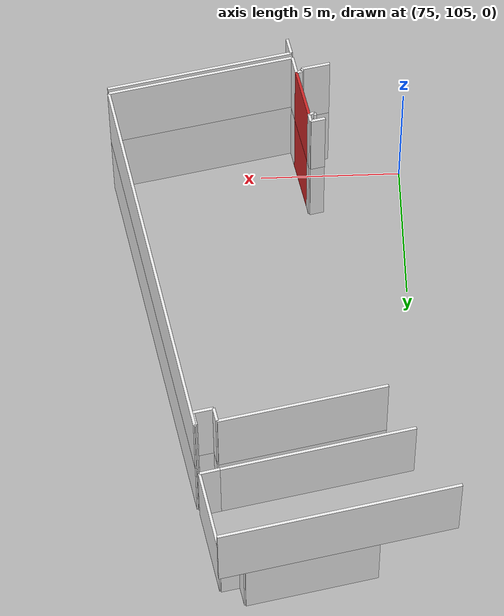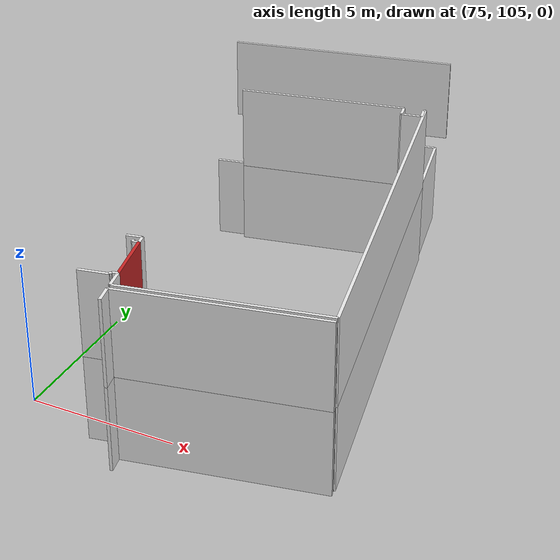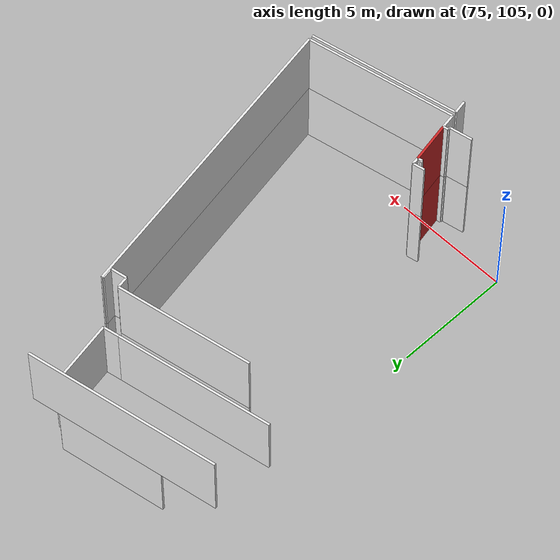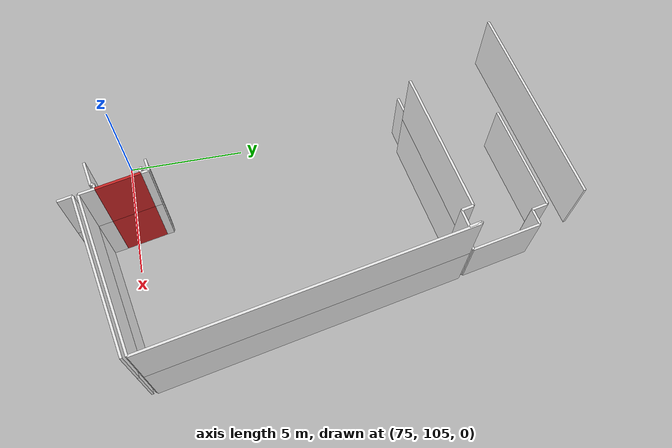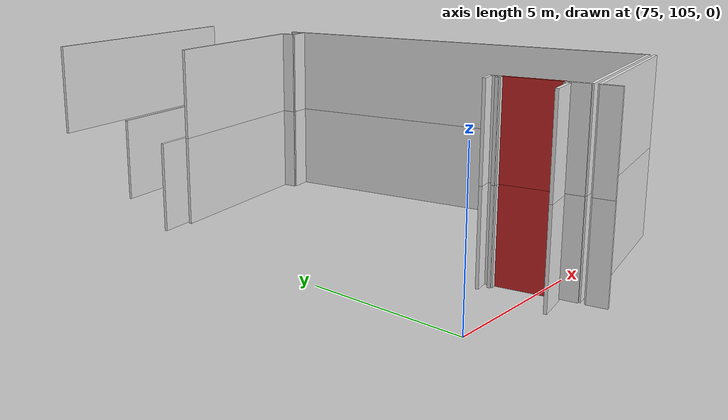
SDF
<sdf version="1.6">
 <world name="default">
  <model name="wall_78.6_105.4_1.5">
   <static>true</static>
   <pose>78.55999999999767 105.38999999989755 1.5 0 0 -1.3690339825092397</pose>
   <link name="link">
    <visual name="visual">
     <geometry><box><size>1.796440926065282 0.1 3</size></box></geometry>
     <material>
      <script><uri>file://media/materials/scripts/gazebo.material</uri><name>Gazebo/Red</name></script>
     </material>
    </visual>
    <collision name="collision"><geometry><box><size>1.796440926065282 0.1 3</size></box></geometry></collision>
   </link>
  </model>
  <model name="wall_78.6_105.4_4.5">
   <static>true</static>
   <pose>78.55999999999767 105.38999999989755 4.5 0 0 -1.3690339825092397</pose>
   <link name="link">
    <visual name="visual">
     <geometry><box><size>1.796440926065282 0.1 3</size></box></geometry>
     <material>
      <script><uri>file://media/materials/scripts/gazebo.material</uri><name>Gazebo/Red</name></script>
     </material>
    </visual>
    <collision name="collision"><geometry><box><size>1.796440926065282 0.1 3</size></box></geometry></collision>
   </link>
  </model>
  <model name="wall_78.1_106.5_1.5">
   <static>true</static>
   <pose>78.0800000000163 106.52000000001863 1.5 0 0 0.19739555913347878</pose>
   <link name="link">
    <visual name="visual">
     <geometry><box><size>0.5099019512862195 0.1 3</size></box></geometry>
     <material>
      <script><uri>file://media/materials/scripts/gazebo.material</uri><name>Gazebo/White</name></script>
     </material>
    </visual>
    <collision name="collision"><geometry><box><size>0.5099019512862195 0.1 3</size></box></geometry></collision>
   </link>
  </model>
  <model name="wall_78.4_106.4_1.5">
   <static>true</static>
   <pose>78.35500000001048 106.4199999999255 1.5 0 0 -1.4056476493173427</pose>
   <link name="link">
    <visual name="visual">
     <geometry><box><size>0.30413812632926696 0.1 3</size></box></geometry>
     <material>
      <script><uri>file://media/materials/scripts/gazebo.material</uri><name>Gazebo/White</name></script>
     </material>
    </visual>
    <collision name="collision"><geometry><box><size>0.30413812632926696 0.1 3</size></box></geometry></collision>
   </link>
  </model>
  <model name="wall_78.8_104.2_1.5">
   <static>true</static>
   <pose>78.79999999998836 104.19499999983236 1.5 0 0 -1.382574821464652</pose>
   <link name="link">
    <visual name="visual">
     <geometry><box><size>0.6413267496823023 0.1 3</size></box></geometry>
     <material>
      <script><uri>file://media/materials/scripts/gazebo.material</uri><name>Gazebo/White</name></script>
     </material>
    </visual>
    <collision name="collision"><geometry><box><size>0.6413267496823023 0.1 3</size></box></geometry></collision>
   </link>
  </model>
  <model name="wall_82.1_104.5_1.5">
   <static>true</static>
   <pose>82.07499999998254 104.51499999989755 1.5 0 0 0.1950017882431763</pose>
   <link name="link">
    <visual name="visual">
     <geometry><box><size>6.554220014613294 0.1 3</size></box></geometry>
     <material>
      <script><uri>file://media/materials/scripts/gazebo.material</uri><name>Gazebo/White</name></script>
     </material>
    </visual>
    <collision name="collision"><geometry><box><size>6.554220014613294 0.1 3</size></box></geometry></collision>
   </link>
  </model>
  <model name="wall_84.0_111.8_1.5">
   <static>true</static>
   <pose>83.97000000000116 111.76499999989755 1.5 0 0 1.7677557767697853</pose>
   <link name="link">
    <visual name="visual">
     <geometry><box><size>13.490830219051515 0.1 3</size></box></geometry>
     <material>
      <script><uri>file://media/materials/scripts/gazebo.material</uri><name>Gazebo/White</name></script>
     </material>
    </visual>
    <collision name="collision"><geometry><box><size>13.490830219051515 0.1 3</size></box></geometry></collision>
   </link>
  </model>
  <model name="wall_82.6_118.4_1.5">
   <static>true</static>
   <pose>82.625 118.375 1.5 0 0 -2.944197098217425</pose>
   <link name="link">
    <visual name="visual">
     <geometry><box><size>0.050990195137754324 0.1 3</size></box></geometry>
     <material>
      <script><uri>file://media/materials/scripts/gazebo.material</uri><name>Gazebo/White</name></script>
     </material>
    </visual>
    <collision name="collision">
     <geometry><box><size>0.050990195137754324 0.1 3</size></box></geometry>
    </collision>
   </link>
  </model>
  <model name="wall_82.6_118.1_1.5">
   <static>true</static>
   <pose>82.64999999999418 118.13000000012107 1.5 0 0 -1.3654009375276481</pose>
   <link name="link">
    <visual name="visual">
     <geometry><box><size>0.4903060268741386 0.1 3</size></box></geometry>
     <material>
      <script><uri>file://media/materials/scripts/gazebo.material</uri><name>Gazebo/White</name></script>
     </material>
    </visual>
    <collision name="collision"><geometry><box><size>0.4903060268741386 0.1 3</size></box></geometry></collision>
   </link>
  </model>
  <model name="wall_82.4_117.8_1.5">
   <static>true</static>
   <pose>82.35500000001048 117.82499999995343 1.5 0 0 -2.9553698126839456</pose>
   <link name="link">
    <visual name="visual">
     <geometry><box><size>0.7021395873294909 0.1 3</size></box></geometry>
     <material>
      <script><uri>file://media/materials/scripts/gazebo.material</uri><name>Gazebo/White</name></script>
     </material>
    </visual>
    <collision name="collision"><geometry><box><size>0.7021395873294909 0.1 3</size></box></geometry></collision>
   </link>
  </model>
  <model name="wall_82.0_118.0_1.5">
   <static>true</static>
   <pose>81.95999999999185 118.0 1.5 0 0 1.7761917158684424</pose>
   <link name="link">
    <visual name="visual">
     <geometry><box><size>0.4903060273300119 0.1 3</size></box></geometry>
     <material>
      <script><uri>file://media/materials/scripts/gazebo.material</uri><name>Gazebo/White</name></script>
     </material>
    </visual>
    <collision name="collision"><geometry><box><size>0.4903060273300119 0.1 3</size></box></geometry></collision>
   </link>
  </model>
  <model name="wall_79.1_117.7_1.5">
   <static>true</static>
   <pose>79.06499999997322 117.68000000016764 1.5 0 0 -2.947240709618677</pose>
   <link name="link">
    <visual name="visual">
     <geometry><box><size>5.799180976679107 0.1 3</size></box></geometry>
     <material>
      <script><uri>file://media/materials/scripts/gazebo.material</uri><name>Gazebo/White</name></script>
     </material>
    </visual>
    <collision name="collision"><geometry><box><size>5.799180976679107 0.1 3</size></box></geometry></collision>
   </link>
  </model>
  <model name="wall_82.1_104.3_1.5">
   <static>true</static>
   <pose>82.11000000001513 104.31500000017695 1.5 0 0 -2.9468860624579416</pose>
   <link name="link">
    <visual name="visual">
     <geometry><box><size>6.564030773852092 0.1 3</size></box></geometry>
     <material>
      <script><uri>file://media/materials/scripts/gazebo.material</uri><name>Gazebo/White</name></script>
     </material>
    </visual>
    <collision name="collision"><geometry><box><size>6.564030773852092 0.1 3</size></box></geometry></collision>
   </link>
  </model>
  <model name="wall_79.0_103.4_1.5">
   <static>true</static>
   <pose>78.95000000001164 103.38500000000931 1.5 0 0 -1.370143449587411</pose>
   <link name="link">
    <visual name="visual">
     <geometry><box><size>0.6020797292489833 0.1 3</size></box></geometry>
     <material>
      <script><uri>file://media/materials/scripts/gazebo.material</uri><name>Gazebo/White</name></script>
     </material>
    </visual>
    <collision name="collision"><geometry><box><size>0.6020797292489833 0.1 3</size></box></geometry></collision>
   </link>
  </model>
  <model name="wall_78.9_121.6_1.5">
   <static>true</static>
   <pose>78.89000000001397 121.61499999999069 1.5 0 0 0.19441557721220537</pose>
   <link name="link">
    <visual name="visual">
     <geometry><box><size>4.606788469248449 0.1 3</size></box></geometry>
     <material>
      <script><uri>file://media/materials/scripts/gazebo.material</uri><name>Gazebo/White</name></script>
     </material>
    </visual>
    <collision name="collision"><geometry><box><size>4.606788469248449 0.1 3</size></box></geometry></collision>
   </link>
  </model>
  <model name="wall_81.2_121.7_1.5">
   <static>true</static>
   <pose>81.22000000000116 121.71999999997206 1.5 0 0 -1.3677511096525332</pose>
   <link name="link">
    <visual name="visual">
     <geometry><box><size>0.6942621984636649 0.1 3</size></box></geometry>
     <material>
      <script><uri>file://media/materials/scripts/gazebo.material</uri><name>Gazebo/White</name></script>
     </material>
    </visual>
    <collision name="collision"><geometry><box><size>0.6942621984636649 0.1 3</size></box></geometry></collision>
   </link>
  </model>
  <model name="wall_81.6_121.4_1.5">
   <static>true</static>
   <pose>81.62999999997555 121.44499999983236 1.5 0 0 0.18889718072096112</pose>
   <link name="link">
    <visual name="visual">
     <geometry><box><size>0.6923149571989928 0.1 3</size></box></geometry>
     <material>
      <script><uri>file://media/materials/scripts/gazebo.material</uri><name>Gazebo/White</name></script>
     </material>
    </visual>
    <collision name="collision"><geometry><box><size>0.6923149571989928 0.1 3</size></box></geometry></collision>
   </link>
  </model>
  <model name="wall_82.3_120.0_1.5">
   <static>true</static>
   <pose>82.26499999998487 120.0449999999255 1.5 0 0 -1.3720884317123052</pose>
   <link name="link">
    <visual name="visual">
     <geometry><box><size>2.9888124729202743 0.1 3</size></box></geometry>
     <material>
      <script><uri>file://media/materials/scripts/gazebo.material</uri><name>Gazebo/White</name></script>
     </material>
    </visual>
    <collision name="collision"><geometry><box><size>2.9888124729202743 0.1 3</size></box></geometry></collision>
   </link>
  </model>
  <model name="wall_82.2_118.5_1.5">
   <static>true</static>
   <pose>82.21499999999651 118.51000000000931 1.5 0 0 -2.9414115854430696</pose>
   <link name="link">
    <visual name="visual">
     <geometry><box><size>0.7040596565914858 0.1 3</size></box></geometry>
     <material>
      <script><uri>file://media/materials/scripts/gazebo.material</uri><name>Gazebo/White</name></script>
     </material>
    </visual>
    <collision name="collision"><geometry><box><size>0.7040596565914858 0.1 3</size></box></geometry></collision>
   </link>
  </model>
  <model name="wall_78.5_117.8_1.5">
   <static>true</static>
   <pose>78.52999999999884 117.78000000002794 1.5 0 0 -2.9465012371516703</pose>
   <link name="link">
    <visual name="visual">
     <geometry><box><size>6.809170287154237 0.1 3</size></box></geometry>
     <material>
      <script><uri>file://media/materials/scripts/gazebo.material</uri><name>Gazebo/White</name></script>
     </material>
    </visual>
    <collision name="collision"><geometry><box><size>6.809170287154237 0.1 3</size></box></geometry></collision>
   </link>
  </model>
  <model name="wall_78.2_106.3_1.5">
   <static>true</static>
   <pose>78.17499999998836 106.28000000002794 1.5 0 0 -1.4711276743037347</pose>
   <link name="link">
    <visual name="visual">
     <geometry><box><size>0.10049875630480566 0.1 3</size></box></geometry>
     <material>
      <script><uri>file://media/materials/scripts/gazebo.material</uri><name>Gazebo/White</name></script>
     </material>
    </visual>
    <collision name="collision"><geometry><box><size>0.10049875630480566 0.1 3</size></box></geometry></collision>
   </link>
  </model>
  <model name="wall_78.3_106.2_1.5">
   <static>true</static>
   <pose>78.27999999999884 106.25 1.5 0 0 0.19739556001778746</pose>
   <link name="link">
    <visual name="visual">
     <geometry><box><size>0.20396078056243275 0.1 3</size></box></geometry>
     <material>
      <script><uri>file://media/materials/scripts/gazebo.material</uri><name>Gazebo/White</name></script>
     </material>
    </visual>
    <collision name="collision"><geometry><box><size>0.20396078056243275 0.1 3</size></box></geometry></collision>
   </link>
  </model>
  <model name="wall_78.6_104.5_1.5">
   <static>true</static>
   <pose>78.63500000000931 104.48999999999069 1.5 0 0 -2.9533711502210322</pose>
   <link name="link">
    <visual name="visual">
     <geometry><box><size>0.21377558314756415 0.1 3</size></box></geometry>
     <material>
      <script><uri>file://media/materials/scripts/gazebo.material</uri><name>Gazebo/White</name></script>
     </material>
    </visual>
    <collision name="collision"><geometry><box><size>0.21377558314756415 0.1 3</size></box></geometry></collision>
   </link>
  </model>
  <model name="wall_78.5_104.4_1.5">
   <static>true</static>
   <pose>78.54000000000815 104.42000000015832 1.5 0 0 -1.3734007675047049</pose>
   <link name="link">
    <visual name="visual">
     <geometry><box><size>0.10198039035541688 0.1 3</size></box></geometry>
     <material>
      <script><uri>file://media/materials/scripts/gazebo.material</uri><name>Gazebo/White</name></script>
     </material>
    </visual>
    <collision name="collision"><geometry><box><size>0.10198039035541688 0.1 3</size></box></geometry></collision>
   </link>
  </model>
  <model name="wall_78.1_104.3_1.5">
   <static>true</static>
   <pose>78.05999999999767 104.2750000001397 1.5 0 0 -2.950090935171577</pose>
   <link name="link">
    <visual name="visual">
     <geometry><box><size>0.9982484660355146 0.1 3</size></box></geometry>
     <material>
      <script><uri>file://media/materials/scripts/gazebo.material</uri><name>Gazebo/White</name></script>
     </material>
    </visual>
    <collision name="collision"><geometry><box><size>0.9982484660355146 0.1 3</size></box></geometry></collision>
   </link>
  </model>
  <model name="wall_78.1_106.5_4.5">
   <static>true</static>
   <pose>78.0800000000163 106.52000000001863 4.5 0 0 0.19739555913347878</pose>
   <link name="link">
    <visual name="visual">
     <geometry><box><size>0.5099019512862195 0.1 3</size></box></geometry>
     <material>
      <script><uri>file://media/materials/scripts/gazebo.material</uri><name>Gazebo/White</name></script>
     </material>
    </visual>
    <collision name="collision"><geometry><box><size>0.5099019512862195 0.1 3</size></box></geometry></collision>
   </link>
  </model>
  <model name="wall_78.4_106.4_4.5">
   <static>true</static>
   <pose>78.35500000001048 106.4199999999255 4.5 0 0 -1.4056476493173427</pose>
   <link name="link">
    <visual name="visual">
     <geometry><box><size>0.30413812632926696 0.1 3</size></box></geometry>
     <material>
      <script><uri>file://media/materials/scripts/gazebo.material</uri><name>Gazebo/White</name></script>
     </material>
    </visual>
    <collision name="collision"><geometry><box><size>0.30413812632926696 0.1 3</size></box></geometry></collision>
   </link>
  </model>
  <model name="wall_78.8_104.2_4.5">
   <static>true</static>
   <pose>78.79999999998836 104.19499999983236 4.5 0 0 -1.382574821464652</pose>
   <link name="link">
    <visual name="visual">
     <geometry><box><size>0.6413267496823023 0.1 3</size></box></geometry>
     <material>
      <script><uri>file://media/materials/scripts/gazebo.material</uri><name>Gazebo/White</name></script>
     </material>
    </visual>
    <collision name="collision"><geometry><box><size>0.6413267496823023 0.1 3</size></box></geometry></collision>
   </link>
  </model>
  <model name="wall_82.1_104.5_4.5">
   <static>true</static>
   <pose>82.07499999998254 104.51499999989755 4.5 0 0 0.1950017882431763</pose>
   <link name="link">
    <visual name="visual">
     <geometry><box><size>6.554220014613294 0.1 3</size></box></geometry>
     <material>
      <script><uri>file://media/materials/scripts/gazebo.material</uri><name>Gazebo/White</name></script>
     </material>
    </visual>
    <collision name="collision"><geometry><box><size>6.554220014613294 0.1 3</size></box></geometry></collision>
   </link>
  </model>
  <model name="wall_84.0_111.8_4.5">
   <static>true</static>
   <pose>83.97000000000116 111.76499999989755 4.5 0 0 1.7677557767697853</pose>
   <link name="link">
    <visual name="visual">
     <geometry><box><size>13.490830219051515 0.1 3</size></box></geometry>
     <material>
      <script><uri>file://media/materials/scripts/gazebo.material</uri><name>Gazebo/White</name></script>
     </material>
    </visual>
    <collision name="collision"><geometry><box><size>13.490830219051515 0.1 3</size></box></geometry></collision>
   </link>
  </model>
  <model name="wall_82.6_118.4_4.5">
   <static>true</static>
   <pose>82.625 118.375 4.5 0 0 -2.944197098217425</pose>
   <link name="link">
    <visual name="visual">
     <geometry><box><size>0.050990195137754324 0.1 3</size></box></geometry>
     <material>
      <script><uri>file://media/materials/scripts/gazebo.material</uri><name>Gazebo/White</name></script>
     </material>
    </visual>
    <collision name="collision">
     <geometry><box><size>0.050990195137754324 0.1 3</size></box></geometry>
    </collision>
   </link>
  </model>
  <model name="wall_82.6_118.1_4.5">
   <static>true</static>
   <pose>82.64999999999418 118.13000000012107 4.5 0 0 -1.3654009375276481</pose>
   <link name="link">
    <visual name="visual">
     <geometry><box><size>0.4903060268741386 0.1 3</size></box></geometry>
     <material>
      <script><uri>file://media/materials/scripts/gazebo.material</uri><name>Gazebo/White</name></script>
     </material>
    </visual>
    <collision name="collision"><geometry><box><size>0.4903060268741386 0.1 3</size></box></geometry></collision>
   </link>
  </model>
  <model name="wall_82.4_117.8_4.5">
   <static>true</static>
   <pose>82.35500000001048 117.82499999995343 4.5 0 0 -2.9553698126839456</pose>
   <link name="link">
    <visual name="visual">
     <geometry><box><size>0.7021395873294909 0.1 3</size></box></geometry>
     <material>
      <script><uri>file://media/materials/scripts/gazebo.material</uri><name>Gazebo/White</name></script>
     </material>
    </visual>
    <collision name="collision"><geometry><box><size>0.7021395873294909 0.1 3</size></box></geometry></collision>
   </link>
  </model>
  <model name="wall_82.0_118.0_4.5">
   <static>true</static>
   <pose>81.95999999999185 118.0 4.5 0 0 1.7761917158684424</pose>
   <link name="link">
    <visual name="visual">
     <geometry><box><size>0.4903060273300119 0.1 3</size></box></geometry>
     <material>
      <script><uri>file://media/materials/scripts/gazebo.material</uri><name>Gazebo/White</name></script>
     </material>
    </visual>
    <collision name="collision"><geometry><box><size>0.4903060273300119 0.1 3</size></box></geometry></collision>
   </link>
  </model>
  <model name="wall_79.1_117.7_4.5">
   <static>true</static>
   <pose>79.06499999997322 117.68000000016764 4.5 0 0 -2.947240709618677</pose>
   <link name="link">
    <visual name="visual">
     <geometry><box><size>5.799180976679107 0.1 3</size></box></geometry>
     <material>
      <script><uri>file://media/materials/scripts/gazebo.material</uri><name>Gazebo/White</name></script>
     </material>
    </visual>
    <collision name="collision"><geometry><box><size>5.799180976679107 0.1 3</size></box></geometry></collision>
   </link>
  </model>
  <model name="wall_82.1_104.3_4.5">
   <static>true</static>
   <pose>82.11000000001513 104.31500000017695 4.5 0 0 -2.9468860624579416</pose>
   <link name="link">
    <visual name="visual">
     <geometry><box><size>6.564030773852092 0.1 3</size></box></geometry>
     <material>
      <script><uri>file://media/materials/scripts/gazebo.material</uri><name>Gazebo/White</name></script>
     </material>
    </visual>
    <collision name="collision"><geometry><box><size>6.564030773852092 0.1 3</size></box></geometry></collision>
   </link>
  </model>
  <model name="wall_79.0_103.4_4.5">
   <static>true</static>
   <pose>78.95000000001164 103.38500000000931 4.5 0 0 -1.370143449587411</pose>
   <link name="link">
    <visual name="visual">
     <geometry><box><size>0.6020797292489833 0.1 3</size></box></geometry>
     <material>
      <script><uri>file://media/materials/scripts/gazebo.material</uri><name>Gazebo/White</name></script>
     </material>
    </visual>
    <collision name="collision"><geometry><box><size>0.6020797292489833 0.1 3</size></box></geometry></collision>
   </link>
  </model>
  <model name="wall_78.2_106.3_4.5">
   <static>true</static>
   <pose>78.17499999998836 106.28000000002794 4.5 0 0 -1.4711276743037347</pose>
   <link name="link">
    <visual name="visual">
     <geometry><box><size>0.10049875630480566 0.1 3</size></box></geometry>
     <material>
      <script><uri>file://media/materials/scripts/gazebo.material</uri><name>Gazebo/White</name></script>
     </material>
    </visual>
    <collision name="collision"><geometry><box><size>0.10049875630480566 0.1 3</size></box></geometry></collision>
   </link>
  </model>
  <model name="wall_78.3_106.2_4.5">
   <static>true</static>
   <pose>78.27999999999884 106.25 4.5 0 0 0.19739556001778746</pose>
   <link name="link">
    <visual name="visual">
     <geometry><box><size>0.20396078056243275 0.1 3</size></box></geometry>
     <material>
      <script><uri>file://media/materials/scripts/gazebo.material</uri><name>Gazebo/White</name></script>
     </material>
    </visual>
    <collision name="collision"><geometry><box><size>0.20396078056243275 0.1 3</size></box></geometry></collision>
   </link>
  </model>
  <model name="wall_78.6_104.5_4.5">
   <static>true</static>
   <pose>78.63500000000931 104.48999999999069 4.5 0 0 -2.9533711502210322</pose>
   <link name="link">
    <visual name="visual">
     <geometry><box><size>0.21377558314756415 0.1 3</size></box></geometry>
     <material>
      <script><uri>file://media/materials/scripts/gazebo.material</uri><name>Gazebo/White</name></script>
     </material>
    </visual>
    <collision name="collision"><geometry><box><size>0.21377558314756415 0.1 3</size></box></geometry></collision>
   </link>
  </model>
  <model name="wall_78.5_104.4_4.5">
   <static>true</static>
   <pose>78.54000000000815 104.42000000015832 4.5 0 0 -1.3734007675047049</pose>
   <link name="link">
    <visual name="visual">
     <geometry><box><size>0.10198039035541688 0.1 3</size></box></geometry>
     <material>
      <script><uri>file://media/materials/scripts/gazebo.material</uri><name>Gazebo/White</name></script>
     </material>
    </visual>
    <collision name="collision"><geometry><box><size>0.10198039035541688 0.1 3</size></box></geometry></collision>
   </link>
  </model>
  <model name="wall_78.1_104.3_4.5">
   <static>true</static>
   <pose>78.05999999999767 104.2750000001397 4.5 0 0 -2.950090935171577</pose>
   <link name="link">
    <visual name="visual">
     <geometry><box><size>0.9982484660355146 0.1 3</size></box></geometry>
     <material>
      <script><uri>file://media/materials/scripts/gazebo.material</uri><name>Gazebo/White</name></script>
     </material>
    </visual>
    <collision name="collision"><geometry><box><size>0.9982484660355146 0.1 3</size></box></geometry></collision>
   </link>
  </model>
  <model name="wall_78.0_121.7_4.5">
   <static>true</static>
   <pose>78.03500000000349 121.68999999994412 4.5 0 0 -2.9468394128265745</pose>
   <link name="link">
    <visual name="visual">
     <geometry><box><size>8.164343206863132 0.1 3</size></box></geometry>
     <material>
      <script><uri>file://media/materials/scripts/gazebo.material</uri><name>Gazebo/White</name></script>
     </material>
    </visual>
    <collision name="collision"><geometry><box><size>8.164343206863132 0.1 3</size></box></geometry></collision>
   </link>
  </model>
 </world>
</sdf>
